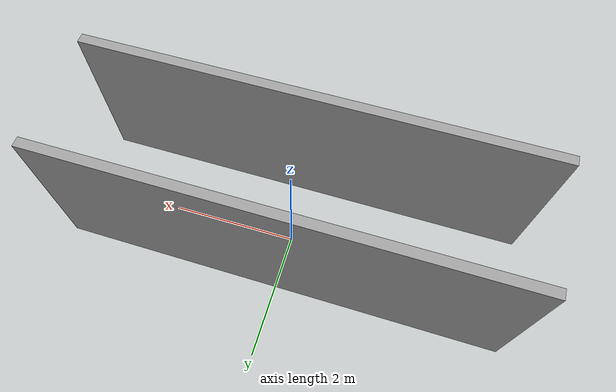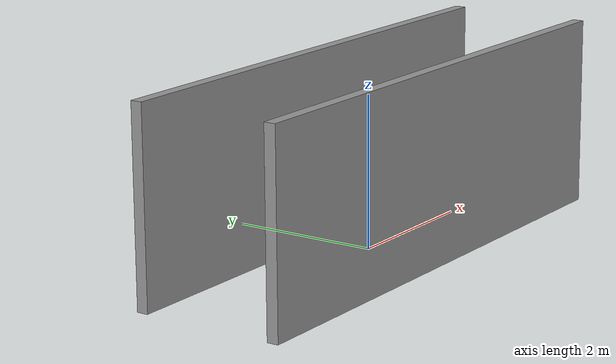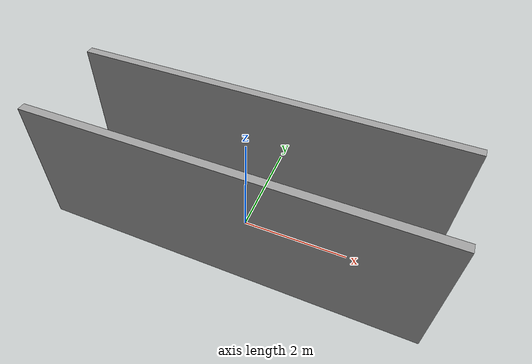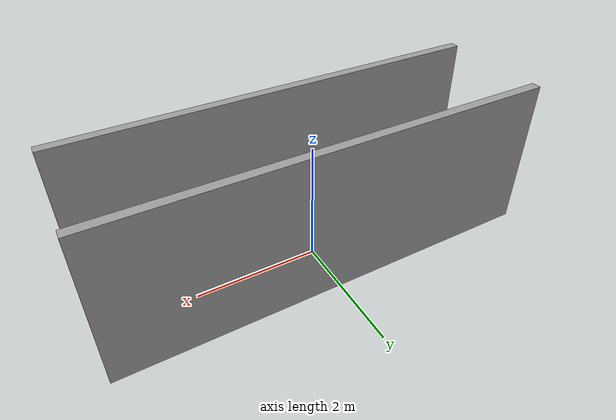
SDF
<?xml version='1.0'?>
<sdf version='1.7'>
  <model name='Hall'>
    <pose>-0.007039 -0.144285 0 0 -0 0</pose>
    <link name='Wall_18'>
      <collision name='Wall_18_Collision'>
        <geometry>
          <box>
            <size>7 0.15 2.5</size>
          </box>
        </geometry>
        <pose>0 0 1.25 0 -0 0</pose>
      </collision>
      <visual name='Wall_18_Visual'>
        <pose>0 0 1.25 0 -0 0</pose>
        <geometry>
          <box>
            <size>7 0.15 2.5</size>
          </box>
        </geometry>
        <material>
          <script>
            <uri>file://media/materials/scripts/gazebo.material</uri>
            <name>Gazebo/Grey</name>
          </script>
          <ambient>1 1 1 1</ambient>
        </material>
        <meta>
          <layer>0</layer>
        </meta>
      </visual>
      <pose>-0 0.925 0 0 -0 3.14159</pose>
    </link>
    <link name='Wall_5'>
      <collision name='Wall_5_Collision'>
        <geometry>
          <box>
            <size>7 0.15 2.5</size>
          </box>
        </geometry>
        <pose>0 0 1.25 0 -0 0</pose>
      </collision>
      <visual name='Wall_5_Visual'>
        <pose>0 0 1.25 0 -0 0</pose>
        <geometry>
          <box>
            <size>7 0.15 2.5</size>
          </box>
        </geometry>
        <material>
          <script>
            <uri>file://media/materials/scripts/gazebo.material</uri>
            <name>Gazebo/Grey</name>
          </script>
          <ambient>1 1 1 1</ambient>
        </material>
        <meta>
          <layer>0</layer>
        </meta>
      </visual>
      <pose>-0 -0.925 0 0 -0 0</pose>
    </link>
    <static>1</static>
  </model>
</sdf>
